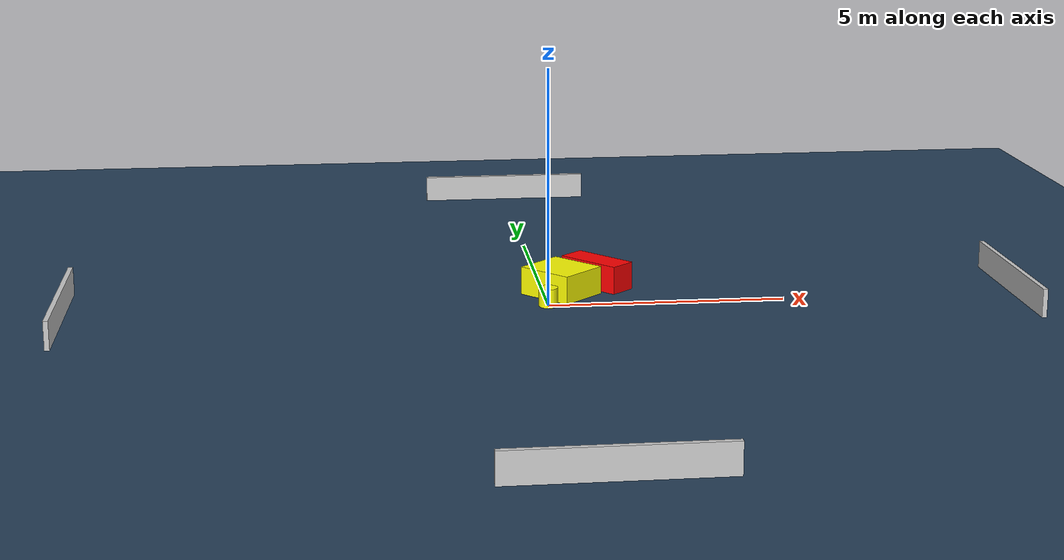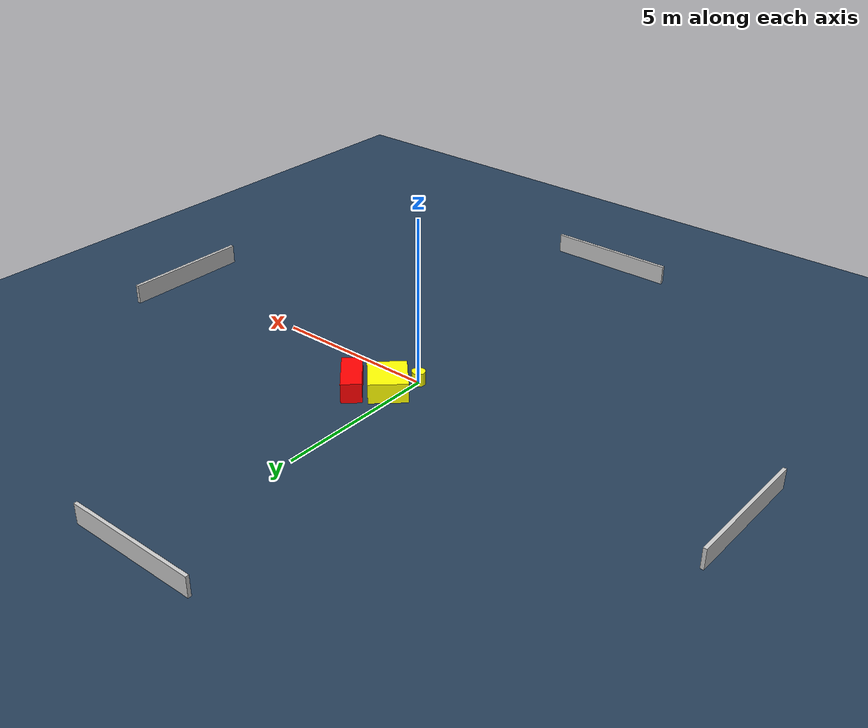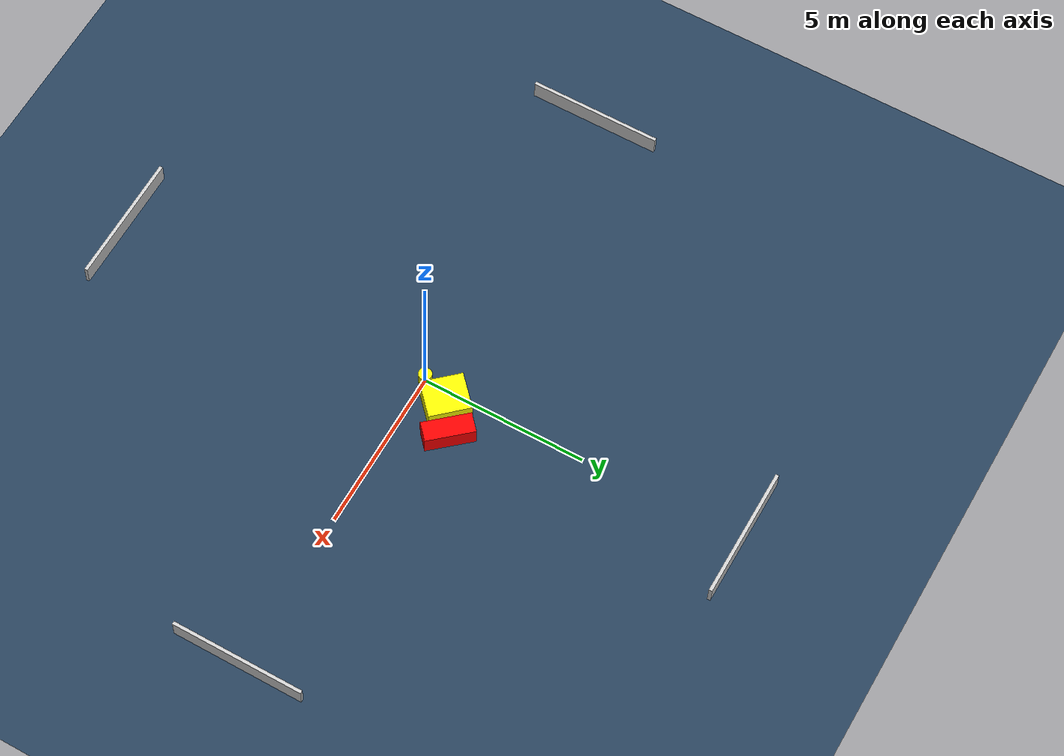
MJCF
<?xml version="1.0" ?>
<mujoco model="generated_environment">
  <option timestep="0.01" integrator="RK4" cone="elliptic"/>
  <default>
    <geom density="1"/>
  </default>
  <asset>
    <texture builtin="gradient" height="3072" name="skybox" rgb1="0.3 0.5 0.7" rgb2="0 0 0" type="skybox" width="512"/>
    <texture builtin="checker" height="300" name="groundplane" rgb1="0.2 0.3 0.4" rgb2="0.1 0.2 0.3" type="2d" width="300"/>
    <material name="groundplane" reflectance="0.2" texrepeat="5 5" texture="groundplane"/>
  </asset>
  <worldbody>
    <light dir="0 0 -1" directional="true" pos="0 0 1.5"/>
    <geom condim="3" friction="0.5 0.005 0.001" material="groundplane" name="floor" pos="0 0 0" size="0 0 0.05" type="plane"/>
    <body name="walls">
      <geom name="wall_1" condim="4" pos="-10.0 0.0 0.3" rgba="0.800000011920929 0.800000011920929 0.800000011920929 1.0" size="0.05 2.0 0.3" type="box"/>
      <geom name="wall_2" condim="4" pos="10.0 0.0 0.3" rgba="0.800000011920929 0.800000011920929 0.800000011920929 1.0" size="0.05 2.0 0.3" type="box"/>
      <geom name="wall_3" condim="4" pos="0.0 -10.0 0.3" rgba="0.800000011920929 0.800000011920929 0.800000011920929 1.0" size="2.0 0.05 0.3" type="box"/>
      <geom name="wall_4" condim="4" pos="0.0 10.0 0.3" rgba="0.800000011920929 0.800000011920929 0.800000011920929 1.0" size="2.0 0.05 0.3" type="box"/>
    </body>
    <body name="robot">
      <joint name="joint_x" type="slide" pos="0 0 0" axis="1 0 0"/>
      <joint name="joint_y" type="slide" pos="0 0 0" axis="0 1 0"/>
      <geom name="robot" type="cylinder" pos="0.0 0.0 0.2" size="0.2 0.2 0.0" mass="5.0" friction="1.0 0.005 0.0001" condim="4" rgba="1.0 1.0 0.0 1.0"/>
    </body>
    <body name="obstacle_1_movable">
      <geom name="obstacle_1_movable" condim="4" pos="0.3781378433680117 0.882301430566523 0.3" euler="0 0 133.0493888808773" friction="0.0 0.005 0.001" rgba="1.0 1.0 0.0 1.0" size="0.6320361046722573 0.5663619856294644 0.3" type="box" mass="0.1"/>
      <joint type="free"/>
    </body>
    <body name="obstacle_2_static">
      <geom name="obstacle_2_static" condim="4" pos="1.2190186312057534 1.443853207676589 0.3" euler="0 0 41.88112446794686" friction="0.0 0.005 0.001" rgba="1.0 0.0 0.0 1.0" size="0.30171651236865155 0.7364383711502467 0.3" type="box"/>
    </body>
  </worldbody>
  <actuator>
    <motor name="actuator_x" joint="joint_x" gear="1" ctrlrange="-1 1"/>
    <motor name="actuator_y" joint="joint_y" gear="1" ctrlrange="-1 1"/>
  </actuator>
</mujoco>
